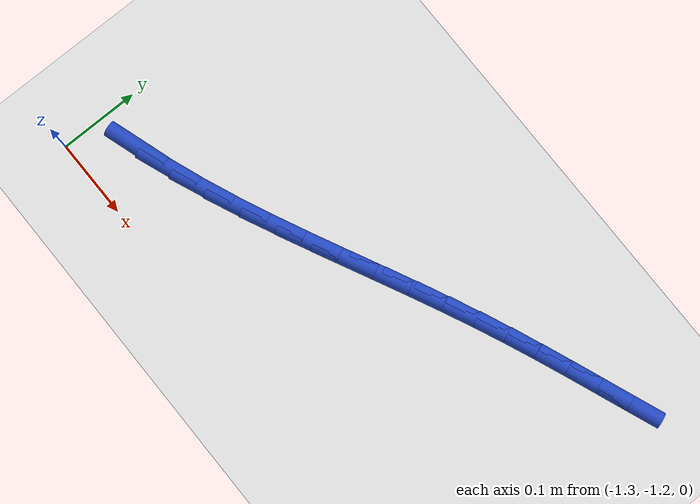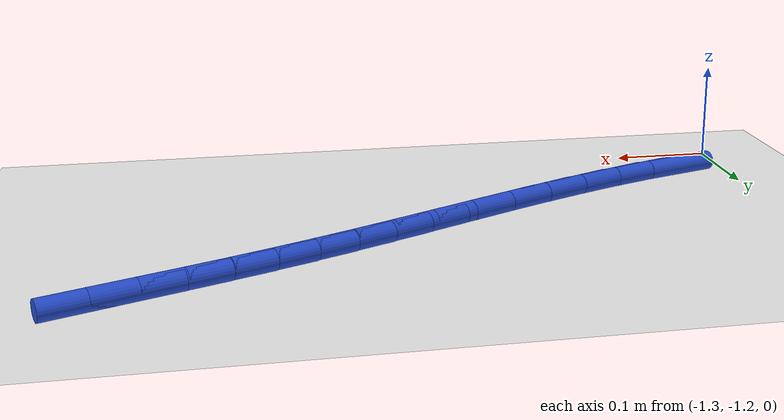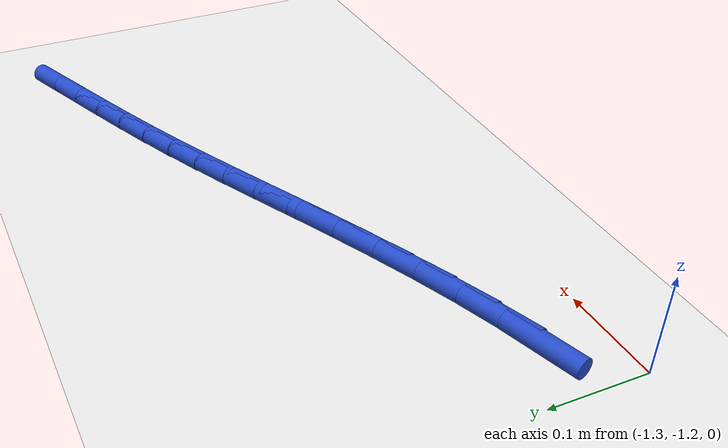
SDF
<sdf version="1.6">
 <world name="default">
  <model name="ground_plane">
   <static>1</static>
   <link name="link">
    <collision name="collision">
     <geometry><plane><normal>0 0 1</normal><size>100 100</size></plane></geometry>
     <surface><friction><ode><mu>100</mu><mu2>50</mu2></ode></friction></surface>
    </collision>
    <visual name="visual">
     <cast_shadows>0</cast_shadows>
     <geometry><plane><normal>0 0 1</normal><size>100 100</size></plane></geometry>
     <material>
      <script><uri>file://media/materials/scripts/gazebo.material</uri><name>Gazebo/WhiteGlow</name></script>
     </material>
    </visual>
   </link>
  </model>
  <model name="line">
   <link name="link_136">
    <pose>-1.2448456824682443 -1.1348911341026127 0.01 0 1.57 0.3123569400135349</pose>
    <collision name="collision">
     <geometry><cylinder><radius>0.01</radius><length>0.08</length></cylinder></geometry>
    </collision>
    <visual name="visual">
     <material>
      <script><name>Gazebo/Blue</name><uri>file://media/materials/scripts/gazebo.material</uri></script>
     </material>
     <geometry><cylinder><radius>0.01</radius><length>0.08</length></cylinder></geometry>
    </visual>
   </link>
   <link name="link_137">
    <pose>-1.201991955653438 -1.121052454736803 0.01 0 1.57 0.3594056940143235</pose>
    <collision name="collision">
     <geometry><cylinder><radius>0.01</radius><length>0.08</length></cylinder></geometry>
    </collision>
    <visual name="visual">
     <material>
      <script><name>Gazebo/Blue</name><uri>file://media/materials/scripts/gazebo.material</uri></script>
     </material>
     <geometry><cylinder><radius>0.01</radius><length>0.08</length></cylinder></geometry>
    </visual>
   </link>
   <link name="link_138">
    <pose>-1.1588691508718079 -1.1048501606190082 0.01 0 1.57 0.3960779422350284</pose>
    <collision name="collision">
     <geometry><cylinder><radius>0.01</radius><length>0.08</length></cylinder></geometry>
    </collision>
    <visual name="visual">
     <material>
      <script><name>Gazebo/Blue</name><uri>file://media/materials/scripts/gazebo.material</uri></script>
     </material>
     <geometry><cylinder><radius>0.01</radius><length>0.08</length></cylinder></geometry>
    </visual>
   </link>
   <link name="link_139">
    <pose>-1.115783975169193 -1.0868329006418858 0.01 0 1.57 0.4238302122448239</pose>
    <collision name="collision">
     <geometry><cylinder><radius>0.01</radius><length>0.08</length></cylinder></geometry>
    </collision>
    <visual name="visual">
     <material>
      <script><name>Gazebo/Blue</name><uri>file://media/materials/scripts/gazebo.material</uri></script>
     </material>
     <geometry><cylinder><radius>0.01</radius><length>0.08</length></cylinder></geometry>
    </visual>
   </link>
   <link name="link_140">
    <pose>-1.073043135591431 -1.067549323698093 0.01 0 1.57 0.4436148737290268</pose>
    <collision name="collision">
     <geometry><cylinder><radius>0.01</radius><length>0.08</length></cylinder></geometry>
    </collision>
    <visual name="visual">
     <material>
      <script><name>Gazebo/Blue</name><uri>file://media/materials/scripts/gazebo.material</uri></script>
     </material>
     <geometry><cylinder><radius>0.01</radius><length>0.08</length></cylinder></geometry>
    </visual>
   </link>
   <link name="link_141">
    <pose>-1.0309533391843613 -1.0475480786802878 0.01 0 1.57 0.4559206893814408</pose>
    <collision name="collision">
     <geometry><cylinder><radius>0.01</radius><length>0.08</length></cylinder></geometry>
    </collision>
    <visual name="visual">
     <material>
      <script><name>Gazebo/Blue</name><uri>file://media/materials/scripts/gazebo.material</uri></script>
     </material>
     <geometry><cylinder><radius>0.01</radius><length>0.08</length></cylinder></geometry>
    </visual>
   </link>
   <link name="link_142">
    <pose>-0.9898212929938225 -1.0273778144811276 0.01 0 1.57 0.460770775787071</pose>
    <collision name="collision">
     <geometry><cylinder><radius>0.01</radius><length>0.08</length></cylinder></geometry>
    </collision>
    <visual name="visual">
     <material>
      <script><name>Gazebo/Blue</name><uri>file://media/materials/scripts/gazebo.material</uri></script>
     </material>
     <geometry><cylinder><radius>0.01</radius><length>0.08</length></cylinder></geometry>
    </visual>
   </link>
   <link name="link_143">
    <pose>-0.9499537040656546 -1.0075871799932705 0.01 0 1.57 0.45774778597791105</pose>
    <collision name="collision">
     <geometry><cylinder><radius>0.01</radius><length>0.08</length></cylinder></geometry>
    </collision>
    <visual name="visual">
     <material>
      <script><name>Gazebo/Blue</name><uri>file://media/materials/scripts/gazebo.material</uri></script>
     </material>
     <geometry><cylinder><radius>0.01</radius><length>0.08</length></cylinder></geometry>
    </visual>
   </link>
   <link name="link_144">
    <pose>-0.9116397643461165 -0.9887119391561905 0.01 0 1.57 0.4483488529839349</pose>
    <collision name="collision">
     <geometry><cylinder><radius>0.01</radius><length>0.08</length></cylinder></geometry>
    </collision>
    <visual name="visual">
     <material>
      <script><name>Gazebo/Blue</name><uri>file://media/materials/scripts/gazebo.material</uri></script>
     </material>
     <geometry><cylinder><radius>0.01</radius><length>0.08</length></cylinder></geometry>
    </visual>
   </link>
   <link name="link_145">
    <pose>-0.8747003199793245 -0.9709433181174549 0.01 0 1.57 0.4349680616061425</pose>
    <collision name="collision">
     <geometry><cylinder><radius>0.01</radius><length>0.08</length></cylinder></geometry>
    </collision>
    <visual name="visual">
     <material>
      <script><name>Gazebo/Blue</name><uri>file://media/materials/scripts/gazebo.material</uri></script>
     </material>
     <geometry><cylinder><radius>0.01</radius><length>0.08</length></cylinder></geometry>
    </visual>
   </link>
   <link name="link_146">
    <pose>-0.838448305821981 -0.9540988989508503 0.01 0 1.57 0.41818291175574007</pose>
    <collision name="collision">
     <geometry><cylinder><radius>0.01</radius><length>0.08</length></cylinder></geometry>
    </collision>
    <visual name="visual">
     <material>
      <script><name>Gazebo/Blue</name><uri>file://media/materials/scripts/gazebo.material</uri></script>
     </material>
     <geometry><cylinder><radius>0.01</radius><length>0.08</length></cylinder></geometry>
    </visual>
   </link>
   <link name="link_147">
    <pose>-0.8021712122152012 -0.937977545515596 0.01 0 1.57 0.39964906242405146</pose>
    <collision name="collision">
     <geometry><cylinder><radius>0.01</radius><length>0.08</length></cylinder></geometry>
    </collision>
    <visual name="visual">
     <material>
      <script><name>Gazebo/Blue</name><uri>file://media/materials/scripts/gazebo.material</uri></script>
     </material>
     <geometry><cylinder><radius>0.01</radius><length>0.08</length></cylinder></geometry>
    </visual>
   </link>
   <link name="link_148">
    <pose>-0.7652476029270029 -0.9223817657884213 0.01 0 1.57 0.38504860403911617</pose>
    <collision name="collision">
     <geometry><cylinder><radius>0.01</radius><length>0.08</length></cylinder></geometry>
    </collision>
    <visual name="visual">
     <material>
      <script><name>Gazebo/Blue</name><uri>file://media/materials/scripts/gazebo.material</uri></script>
     </material>
     <geometry><cylinder><radius>0.01</radius><length>0.08</length></cylinder></geometry>
    </visual>
   </link>
   <link name="link_149">
    <pose>-0.7276324025282707 -0.9071371296485911 0.01 0 1.57 0.37615996060156065</pose>
    <collision name="collision">
     <geometry><cylinder><radius>0.01</radius><length>0.08</length></cylinder></geometry>
    </collision>
    <visual name="visual">
     <material>
      <script><name>Gazebo/Blue</name><uri>file://media/materials/scripts/gazebo.material</uri></script>
     </material>
     <geometry><cylinder><radius>0.01</radius><length>0.08</length></cylinder></geometry>
    </visual>
   </link>
   <link name="link_150">
    <pose>-0.6895053376859193 -0.89207820197295 0.01 0 1.57 0.3727527573634254</pose>
    <collision name="collision">
     <geometry><cylinder><radius>0.01</radius><length>0.08</length></cylinder></geometry>
    </collision>
    <visual name="visual">
     <material>
      <script><name>Gazebo/Blue</name><uri>file://media/materials/scripts/gazebo.material</uri></script>
     </material>
     <geometry><cylinder><radius>0.01</radius><length>0.08</length></cylinder></geometry>
    </visual>
   </link>
   <link name="link_151">
    <pose>-0.6510466467450228 -0.8770395681121023 0.01 0 1.57 0.3746815565552006</pose>
    <collision name="collision">
     <geometry><cylinder><radius>0.01</radius><length>0.08</length></cylinder></geometry>
    </collision>
    <visual name="visual">
     <material>
      <script><name>Gazebo/Blue</name><uri>file://media/materials/scripts/gazebo.material</uri></script>
     </material>
     <geometry><cylinder><radius>0.01</radius><length>0.08</length></cylinder></geometry>
    </visual>
   </link>
  </model>
 </world>
</sdf>
